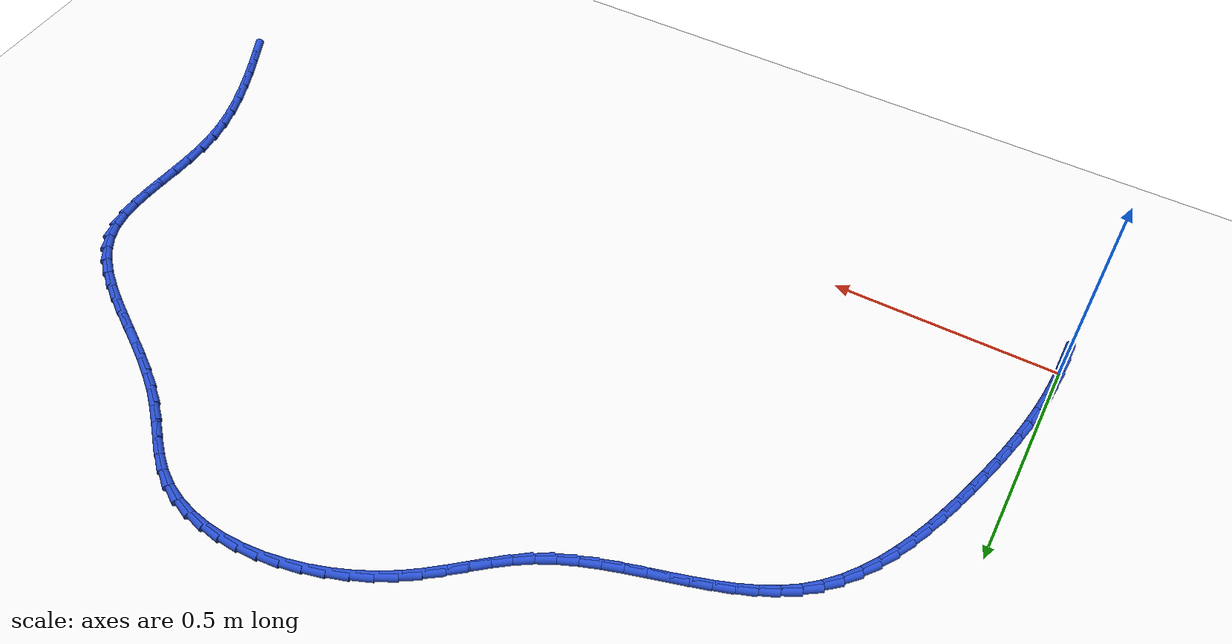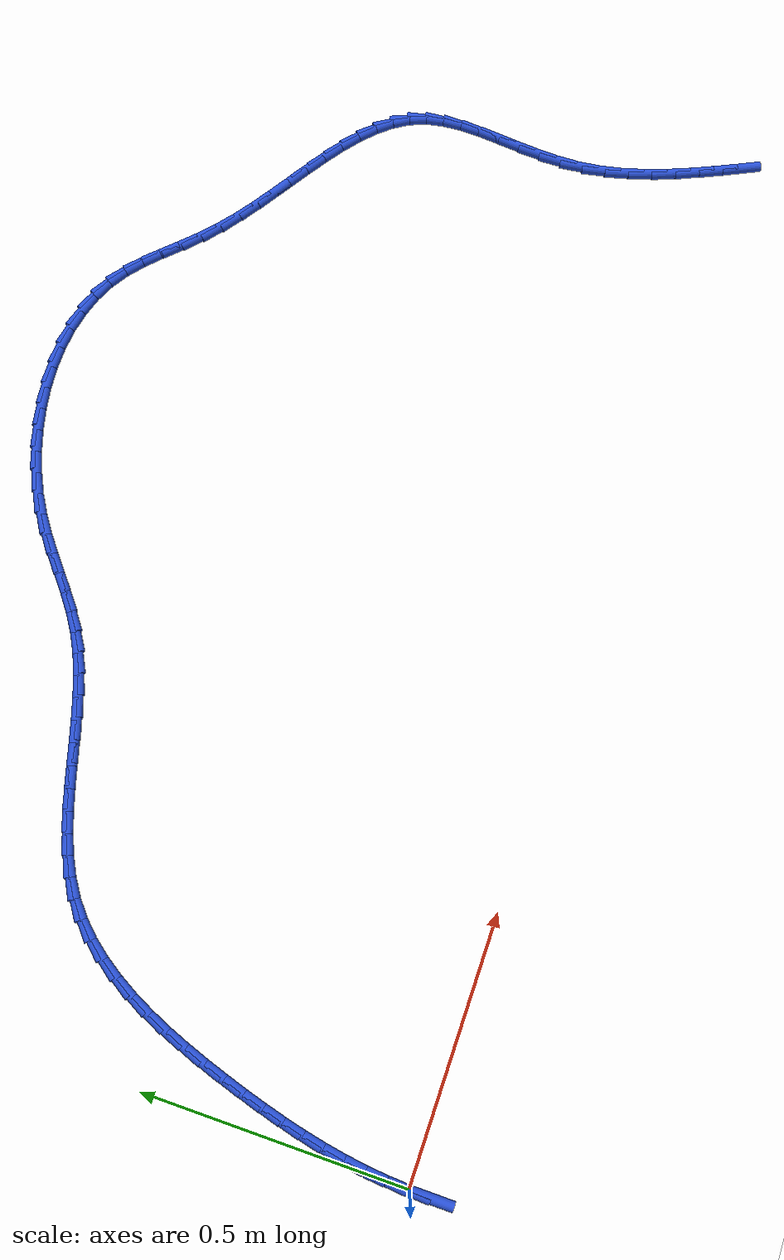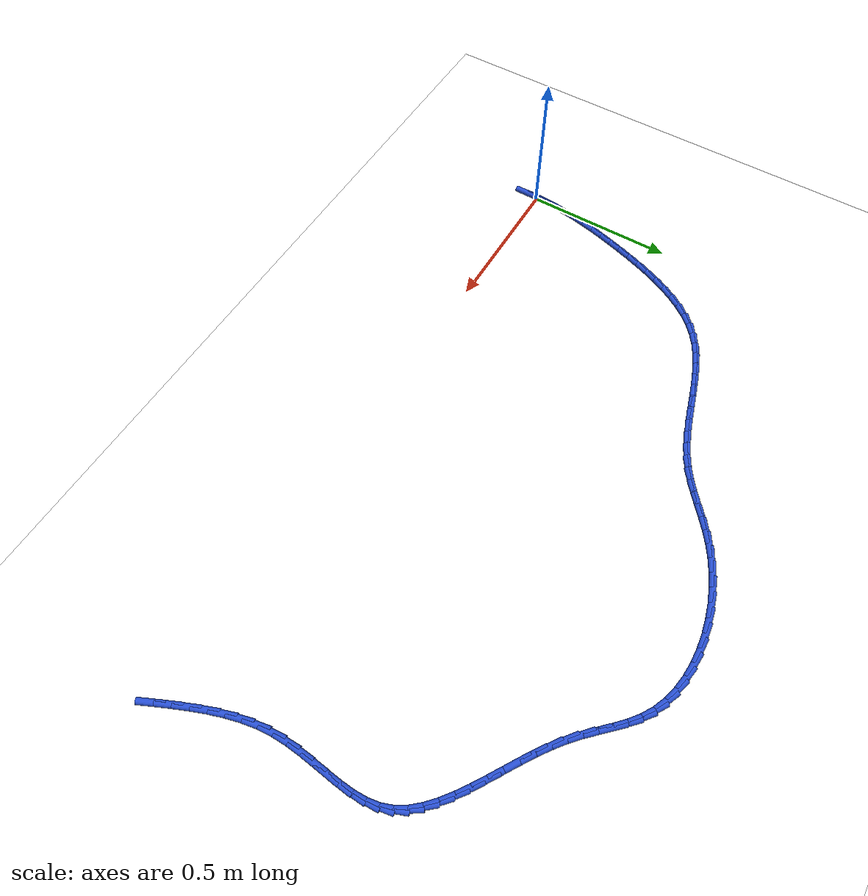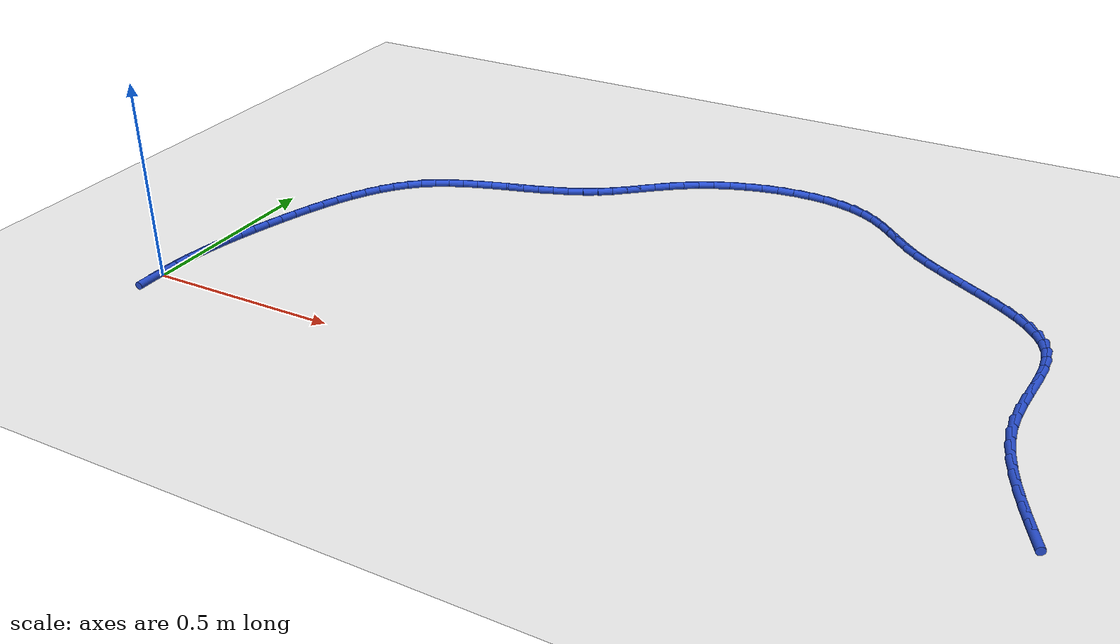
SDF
<sdf version="1.6">
 <world name="default">
  <model name="ground_plane">
   <static>1</static>
   <link name="link">
    <collision name="collision">
     <geometry><plane><normal>0 0 1</normal><size>100 100</size></plane></geometry>
     <surface><friction><ode><mu>100</mu><mu2>50</mu2></ode></friction></surface>
    </collision>
    <visual name="visual">
     <cast_shadows>0</cast_shadows>
     <geometry><plane><normal>0 0 1</normal><size>100 100</size></plane></geometry>
     <material>
      <script><uri>file://media/materials/scripts/gazebo.material</uri><name>Gazebo/WhiteGlow</name></script>
     </material>
    </visual>
   </link>
  </model>
  <model name="line">
   <link name="link_0">
    <pose>-1.5612511283791264e-17 -2.7755575615628914e-17 0.01 0 1.57 1.5235441345351743</pose>
    <collision name="collision">
     <geometry><cylinder><radius>0.01</radius><length>0.08</length></cylinder></geometry>
    </collision>
    <visual name="visual">
     <material>
      <script><name>Gazebo/Blue</name><uri>file://media/materials/scripts/gazebo.material</uri></script>
     </material>
     <geometry><cylinder><radius>0.01</radius><length>0.08</length></cylinder></geometry>
    </visual>
   </link>
   <link name="link_1">
    <pose>0.0019587226408797564 0.04142166824580028 0.01 0 1.57 1.4812073559369945</pose>
    <collision name="collision">
     <geometry><cylinder><radius>0.01</radius><length>0.08</length></cylinder></geometry>
    </collision>
    <visual name="visual">
     <material>
      <script><name>Gazebo/Blue</name><uri>file://media/materials/scripts/gazebo.material</uri></script>
     </material>
     <geometry><cylinder><radius>0.01</radius><length>0.08</length></cylinder></geometry>
    </visual>
   </link>
   <link name="link_2">
    <pose>0.005649222530782924 0.08250508536889196 0.01 0 1.57 1.4417307428629902</pose>
    <collision name="collision">
     <geometry><cylinder><radius>0.01</radius><length>0.08</length></cylinder></geometry>
    </collision>
    <visual name="visual">
     <material>
      <script><name>Gazebo/Blue</name><uri>file://media/materials/scripts/gazebo.material</uri></script>
     </material>
     <geometry><cylinder><radius>0.01</radius><length>0.08</length></cylinder></geometry>
    </visual>
   </link>
   <link name="link_3">
    <pose>0.010949388508123768 0.1233424888013563 0.01 0 1.57 1.4054774619170307</pose>
    <collision name="collision">
     <geometry><cylinder><radius>0.01</radius><length>0.08</length></cylinder></geometry>
    </collision>
    <visual name="visual">
     <material>
      <script><name>Gazebo/Blue</name><uri>file://media/materials/scripts/gazebo.material</uri></script>
     </material>
     <geometry><cylinder><radius>0.01</radius><length>0.08</length></cylinder></geometry>
    </visual>
   </link>
   <link name="link_4">
    <pose>0.01773710941131655 0.1640261159752745 0.01 0 1.57 1.3727204085524367</pose>
    <collision name="collision">
     <geometry><cylinder><radius>0.01</radius><length>0.08</length></cylinder></geometry>
    </collision>
    <visual name="visual">
     <material>
      <script><name>Gazebo/Blue</name><uri>file://media/materials/scripts/gazebo.material</uri></script>
     </material>
     <geometry><cylinder><radius>0.01</radius><length>0.08</length></cylinder></geometry>
    </visual>
   </link>
   <link name="link_5">
    <pose>0.02589027407877554 0.20464820432272776 0.01 0 1.57 1.3436452024755448</pose>
    <collision name="collision">
     <geometry><cylinder><radius>0.01</radius><length>0.08</length></cylinder></geometry>
    </collision>
    <visual name="visual">
     <material>
      <script><name>Gazebo/Blue</name><uri>file://media/materials/scripts/gazebo.material</uri></script>
     </material>
     <geometry><cylinder><radius>0.01</radius><length>0.08</length></cylinder></geometry>
    </visual>
   </link>
   <link name="link_6">
    <pose>0.035286771348914996 0.2453009912757973 0.01 0 1.57 1.3183581355259977</pose>
    <collision name="collision">
     <geometry><cylinder><radius>0.01</radius><length>0.08</length></cylinder></geometry>
    </collision>
    <visual name="visual">
     <material>
      <script><name>Gazebo/Blue</name><uri>file://media/materials/scripts/gazebo.material</uri></script>
     </material>
     <geometry><cylinder><radius>0.01</radius><length>0.08</length></cylinder></geometry>
    </visual>
   </link>
   <link name="link_7">
    <pose>0.04580449006014919 0.28607671426656434 0.01 0 1.57 1.2968970338769943</pose>
    <collision name="collision">
     <geometry><cylinder><radius>0.01</radius><length>0.08</length></cylinder></geometry>
    </collision>
    <visual name="visual">
     <material>
      <script><name>Gazebo/Blue</name><uri>file://media/materials/scripts/gazebo.material</uri></script>
     </material>
     <geometry><cylinder><radius>0.01</radius><length>0.08</length></cylinder></geometry>
    </visual>
   </link>
   <link name="link_8">
    <pose>0.05732131905089237 0.3270676107271101 0.01 0 1.57 1.2792340524860832</pose>
    <collision name="collision">
     <geometry><cylinder><radius>0.01</radius><length>0.08</length></cylinder></geometry>
    </collision>
    <visual name="visual">
     <material>
      <script><name>Gazebo/Blue</name><uri>file://media/materials/scripts/gazebo.material</uri></script>
     </material>
     <geometry><cylinder><radius>0.01</radius><length>0.08</length></cylinder></geometry>
    </visual>
   </link>
   <link name="link_9">
    <pose>0.06971543196683273 0.3683654928058505 0.01 0 1.57 1.2624395250042082</pose>
    <collision name="collision">
     <geometry><cylinder><radius>0.01</radius><length>0.08</length></cylinder></geometry>
    </collision>
    <visual name="visual">
     <material>
      <script><name>Gazebo/Blue</name><uri>file://media/materials/scripts/gazebo.material</uri></script>
     </material>
     <geometry><cylinder><radius>0.01</radius><length>0.08</length></cylinder></geometry>
    </visual>
   </link>
   <link name="link_10">
    <pose>0.08295412861086728 0.40992908651790616 0.01 0 1.57 1.2394478316514548</pose>
    <collision name="collision">
     <geometry><cylinder><radius>0.01</radius><length>0.08</length></cylinder></geometry>
    </collision>
    <visual name="visual">
     <material>
      <script><name>Gazebo/Blue</name><uri>file://media/materials/scripts/gazebo.material</uri></script>
     </material>
     <geometry><cylinder><radius>0.01</radius><length>0.08</length></cylinder></geometry>
    </visual>
   </link>
   <link name="link_11">
    <pose>0.09721997383933727 0.45139567696258104 0.01 0 1.57 1.2088685885341466</pose>
    <collision name="collision">
     <geometry><cylinder><radius>0.01</radius><length>0.08</length></cylinder></geometry>
    </collision>
    <visual name="visual">
     <material>
      <script><name>Gazebo/Blue</name><uri>file://media/materials/scripts/gazebo.material</uri></script>
     </material>
     <geometry><cylinder><radius>0.01</radius><length>0.08</length></cylinder></geometry>
    </visual>
   </link>
   <link name="link_12">
    <pose>0.112727385505535 0.4923549852879122 0.01 0 1.57 1.1700758439015493</pose>
    <collision name="collision">
     <geometry><cylinder><radius>0.01</radius><length>0.08</length></cylinder></geometry>
    </collision>
    <visual name="visual">
     <material>
      <script><name>Gazebo/Blue</name><uri>file://media/materials/scripts/gazebo.material</uri></script>
     </material>
     <geometry><cylinder><radius>0.01</radius><length>0.08</length></cylinder></geometry>
    </visual>
   </link>
   <link name="link_13">
    <pose>0.12969078146275276 0.5323967326419369 0.01 0 1.57 1.1222036602313514</pose>
    <collision name="collision">
     <geometry><cylinder><radius>0.01</radius><length>0.08</length></cylinder></geometry>
    </collision>
    <visual name="visual">
     <material>
      <script><name>Gazebo/Blue</name><uri>file://media/materials/scripts/gazebo.material</uri></script>
     </material>
     <geometry><cylinder><radius>0.01</radius><length>0.08</length></cylinder></geometry>
    </visual>
   </link>
   <link name="link_14">
    <pose>0.14832457956428274 0.5711106401726915 0.01 0 1.57 1.064183337823634</pose>
    <collision name="collision">
     <geometry><cylinder><radius>0.01</radius><length>0.08</length></cylinder></geometry>
    </collision>
    <visual name="visual">
     <material>
      <script><name>Gazebo/Blue</name><uri>file://media/materials/scripts/gazebo.material</uri></script>
     </material>
     <geometry><cylinder><radius>0.01</radius><length>0.08</length></cylinder></geometry>
    </visual>
   </link>
   <link name="link_15">
    <pose>0.1688431976634173 0.6080864290282142 0.01 0 1.57 0.9948238684890548</pose>
    <collision name="collision">
     <geometry><cylinder><radius>0.01</radius><length>0.08</length></cylinder></geometry>
    </collision>
    <visual name="visual">
     <material>
      <script><name>Gazebo/Blue</name><uri>file://media/materials/scripts/gazebo.material</uri></script>
     </material>
     <geometry><cylinder><radius>0.01</radius><length>0.08</length></cylinder></geometry>
    </visual>
   </link>
   <link name="link_16">
    <pose>0.1914610536134488 0.6429138203565417 0.01 0 1.57 0.9129737837188721</pose>
    <collision name="collision">
     <geometry><cylinder><radius>0.01</radius><length>0.08</length></cylinder></geometry>
    </collision>
    <visual name="visual">
     <material>
      <script><name>Gazebo/Blue</name><uri>file://media/materials/scripts/gazebo.material</uri></script>
     </material>
     <geometry><cylinder><radius>0.01</radius><length>0.08</length></cylinder></geometry>
    </visual>
   </link>
   <link name="link_17">
    <pose>0.2163925652676694 0.6751825353057106 0.01 0 1.57 0.8178074552991463</pose>
    <collision name="collision">
     <geometry><cylinder><radius>0.01</radius><length>0.08</length></cylinder></geometry>
    </collision>
    <visual name="visual">
     <material>
      <script><name>Gazebo/Blue</name><uri>file://media/materials/scripts/gazebo.material</uri></script>
     </material>
     <geometry><cylinder><radius>0.01</radius><length>0.08</length></cylinder></geometry>
    </visual>
   </link>
   <link name="link_18">
    <pose>0.24385215047937137 0.7044822950237585 0.01 0 1.57 0.7092593948241007</pose>
    <collision name="collision">
     <geometry><cylinder><radius>0.01</radius><length>0.08</length></cylinder></geometry>
    </collision>
    <visual name="visual">
     <material>
      <script><name>Gazebo/Blue</name><uri>file://media/materials/scripts/gazebo.material</uri></script>
     </material>
     <geometry><cylinder><radius>0.01</radius><length>0.08</length></cylinder></geometry>
    </visual>
   </link>
   <link name="link_19">
    <pose>0.2740541610401618 0.7304029207470495 0.01 0 1.57 0.5948056163354342</pose>
    <collision name="collision">
     <geometry><cylinder><radius>0.01</radius><length>0.08</length></cylinder></geometry>
    </collision>
    <visual name="visual">
     <material>
      <script><name>Gazebo/Blue</name><uri>file://media/materials/scripts/gazebo.material</uri></script>
     </material>
     <geometry><cylinder><radius>0.01</radius><length>0.08</length></cylinder></geometry>
    </visual>
   </link>
   <link name="link_20">
    <pose>0.3070752088580482 0.7527429197977387 0.01 0 1.57 0.4960526257668971</pose>
    <collision name="collision">
     <geometry><cylinder><radius>0.01</radius><length>0.08</length></cylinder></geometry>
    </collision>
    <visual name="visual">
     <material>
      <script><name>Gazebo/Blue</name><uri>file://media/materials/scripts/gazebo.material</uri></script>
     </material>
     <geometry><cylinder><radius>0.01</radius><length>0.08</length></cylinder></geometry>
    </visual>
   </link>
   <link name="link_21">
    <pose>0.34256403859086515 0.7719490499490717 0.01 0 1.57 0.4175085380684355</pose>
    <collision name="collision">
     <geometry><cylinder><radius>0.01</radius><length>0.08</length></cylinder></geometry>
    </collision>
    <visual name="visual">
     <material>
      <script><name>Gazebo/Blue</name><uri>file://media/materials/scripts/gazebo.material</uri></script>
     </material>
     <geometry><cylinder><radius>0.01</radius><length>0.08</length></cylinder></geometry>
    </visual>
   </link>
   <link name="link_22">
    <pose>0.38008655859361185 0.7885935720845658 0.01 0 1.57 0.35842059746714927</pose>
    <collision name="collision">
     <geometry><cylinder><radius>0.01</radius><length>0.08</length></cylinder></geometry>
    </collision>
    <visual name="visual">
     <material>
      <script><name>Gazebo/Blue</name><uri>file://media/materials/scripts/gazebo.material</uri></script>
     </material>
     <geometry><cylinder><radius>0.01</radius><length>0.08</length></cylinder></geometry>
    </visual>
   </link>
   <link name="link_23">
    <pose>0.4192086772212879 0.8032487470877382 0.01 0 1.57 0.3174750009113075</pose>
    <collision name="collision">
     <geometry><cylinder><radius>0.01</radius><length>0.08</length></cylinder></geometry>
    </collision>
    <visual name="visual">
     <material>
      <script><name>Gazebo/Blue</name><uri>file://media/materials/scripts/gazebo.material</uri></script>
     </material>
     <geometry><cylinder><radius>0.01</radius><length>0.08</length></cylinder></geometry>
    </visual>
   </link>
   <link name="link_24">
    <pose>0.45949630282889253 0.8164868358421056 0.01 0 1.57 0.2934138089287271</pose>
    <collision name="collision">
     <geometry><cylinder><radius>0.01</radius><length>0.08</length></cylinder></geometry>
    </collision>
    <visual name="visual">
     <material>
      <script><name>Gazebo/Blue</name><uri>file://media/materials/scripts/gazebo.material</uri></script>
     </material>
     <geometry><cylinder><radius>0.01</radius><length>0.08</length></cylinder></geometry>
    </visual>
   </link>
   <link name="link_25">
    <pose>0.5005153437714251 0.8288800992311849 0.01 0 1.57 0.2853568750488114</pose>
    <collision name="collision">
     <geometry><cylinder><radius>0.01</radius><length>0.08</length></cylinder></geometry>
    </collision>
    <visual name="visual">
     <material>
      <script><name>Gazebo/Blue</name><uri>file://media/materials/scripts/gazebo.material</uri></script>
     </material>
     <geometry><cylinder><radius>0.01</radius><length>0.08</length></cylinder></geometry>
    </visual>
   </link>
   <link name="link_26">
    <pose>0.5418317084038852 0.8410007981384933 0.01 0 1.57 0.2929380370500118</pose>
    <collision name="collision">
     <geometry><cylinder><radius>0.01</radius><length>0.08</length></cylinder></geometry>
    </collision>
    <visual name="visual">
     <material>
      <script><name>Gazebo/Blue</name><uri>file://media/materials/scripts/gazebo.material</uri></script>
     </material>
     <geometry><cylinder><radius>0.01</radius><length>0.08</length></cylinder></geometry>
    </visual>
   </link>
   <link name="link_27">
    <pose>0.5830113050812714 0.8534211934475472 0.01 0 1.57 0.3163355165066644</pose>
    <collision name="collision">
     <geometry><cylinder><radius>0.01</radius><length>0.08</length></cylinder></geometry>
    </collision>
    <visual name="visual">
     <material>
      <script><name>Gazebo/Blue</name><uri>file://media/materials/scripts/gazebo.material</uri></script>
     </material>
     <geometry><cylinder><radius>0.01</radius><length>0.08</length></cylinder></geometry>
    </visual>
   </link>
   <link name="link_28">
    <pose>0.6236200421585838 0.8667135460418643 0.01 0 1.57 0.3562258292247421</pose>
    <collision name="collision">
     <geometry><cylinder><radius>0.01</radius><length>0.08</length></cylinder></geometry>
    </collision>
    <visual name="visual">
     <material>
      <script><name>Gazebo/Blue</name><uri>file://media/materials/scripts/gazebo.material</uri></script>
     </material>
     <geometry><cylinder><radius>0.01</radius><length>0.08</length></cylinder></geometry>
    </visual>
   </link>
   <link name="link_29">
    <pose>0.6632238279908214 0.8814501168049611 0.01 0 1.57 0.413640812660089</pose>
    <collision name="collision">
     <geometry><cylinder><radius>0.01</radius><length>0.08</length></cylinder></geometry>
    </collision>
    <visual name="visual">
     <material>
      <script><name>Gazebo/Blue</name><uri>file://media/materials/scripts/gazebo.material</uri></script>
     </material>
     <geometry><cylinder><radius>0.01</radius><length>0.08</length></cylinder></geometry>
    </visual>
   </link>
   <link name="link_30">
    <pose>0.7013885709329837 0.8982031666203546 0.01 0 1.57 0.48966263523068054</pose>
    <collision name="collision">
     <geometry><cylinder><radius>0.01</radius><length>0.08</length></cylinder></geometry>
    </collision>
    <visual name="visual">
     <material>
      <script><name>Gazebo/Blue</name><uri>file://media/materials/scripts/gazebo.material</uri></script>
     </material>
     <geometry><cylinder><radius>0.01</radius><length>0.08</length></cylinder></geometry>
    </visual>
   </link>
   <link name="link_31">
    <pose>0.7376801793400698 0.9175449563715617 0.01 0 1.57 0.5793938275352636</pose>
    <collision name="collision">
     <geometry><cylinder><radius>0.01</radius><length>0.08</length></cylinder></geometry>
    </collision>
    <visual name="visual">
     <material>
      <script><name>Gazebo/Blue</name><uri>file://media/materials/scripts/gazebo.material</uri></script>
     </material>
     <geometry><cylinder><radius>0.01</radius><length>0.08</length></cylinder></geometry>
    </visual>
   </link>
   <link name="link_32">
    <pose>0.7718120637004536 0.9398775310171754 0.01 0 1.57 0.6499337032496447</pose>
    <collision name="collision">
     <geometry><cylinder><radius>0.01</radius><length>0.08</length></cylinder></geometry>
    </collision>
    <visual name="visual">
     <material>
      <script><name>Gazebo/Blue</name><uri>file://media/materials/scripts/gazebo.material</uri></script>
     </material>
     <geometry><cylinder><radius>0.01</radius><length>0.08</length></cylinder></geometry>
    </visual>
   </link>
   <link name="link_33">
    <pose>0.8043550702523262 0.9646134635950826 0.01 0 1.57 0.6885315111517385</pose>
    <collision name="collision">
     <geometry><cylinder><radius>0.01</radius><length>0.08</length></cylinder></geometry>
    </collision>
    <visual name="visual">
     <material>
      <script><name>Gazebo/Blue</name><uri>file://media/materials/scripts/gazebo.material</uri></script>
     </material>
     <geometry><cylinder><radius>0.01</radius><length>0.08</length></cylinder></geometry>
    </visual>
   </link>
   <link name="link_34">
    <pose>0.8361890696538092 0.9908087161826402 0.01 0 1.57 0.6954569006285427</pose>
    <collision name="collision">
     <geometry><cylinder><radius>0.01</radius><length>0.08</length></cylinder></geometry>
    </collision>
    <visual name="visual">
     <material>
      <script><name>Gazebo/Blue</name><uri>file://media/materials/scripts/gazebo.material</uri></script>
     </material>
     <geometry><cylinder><radius>0.01</radius><length>0.08</length></cylinder></geometry>
    </visual>
   </link>
   <link name="link_35">
    <pose>0.8681943453729905 1.0175187744788063 0.01 0 1.57 0.6716877842707996</pose>
    <collision name="collision">
     <geometry><cylinder><radius>0.01</radius><length>0.08</length></cylinder></geometry>
    </collision>
    <visual name="visual">
     <material>
      <script><name>Gazebo/Blue</name><uri>file://media/materials/scripts/gazebo.material</uri></script>
     </material>
     <geometry><cylinder><radius>0.01</radius><length>0.08</length></cylinder></geometry>
    </visual>
   </link>
   <link name="link_36">
    <pose>0.9012511808779582 1.0437991241825397 0.01 0 1.57 0.6186240878455893</pose>
    <collision name="collision">
     <geometry><cylinder><radius>0.01</radius><length>0.08</length></cylinder></geometry>
    </collision>
    <visual name="visual">
     <material>
      <script><name>Gazebo/Blue</name><uri>file://media/materials/scripts/gazebo.material</uri></script>
     </material>
     <geometry><cylinder><radius>0.01</radius><length>0.08</length></cylinder></geometry>
    </visual>
   </link>
   <link name="link_37">
    <pose>0.9362398596368002 1.0687052509927988 0.01 0 1.57 0.5428938042867804</pose>
    <collision name="collision">
     <geometry><cylinder><radius>0.01</radius><length>0.08</length></cylinder></geometry>
    </collision>
    <visual name="visual">
     <material>
      <script><name>Gazebo/Blue</name><uri>file://media/materials/scripts/gazebo.material</uri></script>
     </material>
     <geometry><cylinder><radius>0.01</radius><length>0.08</length></cylinder></geometry>
    </visual>
   </link>
   <link name="link_38">
    <pose>0.9738482978249657 1.0913970567296392 0.01 0 1.57 0.46622374881692324</pose>
    <collision name="collision">
     <geometry><cylinder><radius>0.01</radius><length>0.08</length></cylinder></geometry>
    </collision>
    <visual name="visual">
     <material>
      <script><name>Gazebo/Blue</name><uri>file://media/materials/scripts/gazebo.material</uri></script>
     </material>
     <geometry><cylinder><radius>0.01</radius><length>0.08</length></cylinder></geometry>
    </visual>
   </link>
   <link name="link_39">
    <pose>1.0138537237460024 1.1115287605880206 0.01 0 1.57 0.39294533319013003</pose>
    <collision name="collision">
     <geometry><cylinder><radius>0.01</radius><length>0.08</length></cylinder></geometry>
    </collision>
    <visual name="visual">
     <material>
      <script><name>Gazebo/Blue</name><uri>file://media/materials/scripts/gazebo.material</uri></script>
     </material>
     <geometry><cylinder><radius>0.01</radius><length>0.08</length></cylinder></geometry>
    </visual>
   </link>
   <link name="link_40">
    <pose>1.055764140451307 1.1289007160466766 0.01 0 1.57 0.32115752640766104</pose>
    <collision name="collision">
     <geometry><cylinder><radius>0.01</radius><length>0.08</length></cylinder></geometry>
    </collision>
    <visual name="visual">
     <material>
      <script><name>Gazebo/Blue</name><uri>file://media/materials/scripts/gazebo.material</uri></script>
     </material>
     <geometry><cylinder><radius>0.01</radius><length>0.08</length></cylinder></geometry>
    </visual>
   </link>
   <link name="link_41">
    <pose>1.0990875106862608 1.1433132984622671 0.01 0 1.57 0.24906964289258188</pose>
    <collision name="collision">
     <geometry><cylinder><radius>0.01</radius><length>0.08</length></cylinder></geometry>
    </collision>
    <visual name="visual">
     <material>
      <script><name>Gazebo/Blue</name><uri>file://media/materials/scripts/gazebo.material</uri></script>
     </material>
     <geometry><cylinder><radius>0.01</radius><length>0.08</length></cylinder></geometry>
    </visual>
   </link>
   <link name="link_42">
    <pose>1.1433317971962451 1.154566883191454 0.01 0 1.57 0.17492102681269955</pose>
    <collision name="collision">
     <geometry><cylinder><radius>0.01</radius><length>0.08</length></cylinder></geometry>
    </collision>
    <visual name="visual">
     <material>
      <script><name>Gazebo/Blue</name><uri>file://media/materials/scripts/gazebo.material</uri></script>
     </material>
     <geometry><cylinder><radius>0.01</radius><length>0.08</length></cylinder></geometry>
    </visual>
   </link>
   <link name="link_43">
    <pose>1.1880049627266416 1.1624618455908977 0.01 0 1.57 0.0969094420745964</pose>
    <collision name="collision">
     <geometry><cylinder><radius>0.01</radius><length>0.08</length></cylinder></geometry>
    </collision>
    <visual name="visual">
     <material>
      <script><name>Gazebo/Blue</name><uri>file://media/materials/scripts/gazebo.material</uri></script>
     </material>
     <geometry><cylinder><radius>0.01</radius><length>0.08</length></cylinder></geometry>
    </visual>
   </link>
   <link name="link_44">
    <pose>1.2326149700228315 1.1667985610172593 0.01 0 1.57 0.01313841733789783</pose>
    <collision name="collision">
     <geometry><cylinder><radius>0.01</radius><length>0.08</length></cylinder></geometry>
    </collision>
    <visual name="visual">
     <material>
      <script><name>Gazebo/Blue</name><uri>file://media/materials/scripts/gazebo.material</uri></script>
     </material>
     <geometry><cylinder><radius>0.01</radius><length>0.08</length></cylinder></geometry>
    </visual>
   </link>
   <link name="link_45">
    <pose>1.2766697818301966 1.1673774048271992 0.01 0 1.57 -0.07839844966000052</pose>
    <collision name="collision">
     <geometry><cylinder><radius>0.01</radius><length>0.08</length></cylinder></geometry>
    </collision>
    <visual name="visual">
     <material>
      <script><name>Gazebo/Blue</name><uri>file://media/materials/scripts/gazebo.material</uri></script>
     </material>
     <geometry><cylinder><radius>0.01</radius><length>0.08</length></cylinder></geometry>
    </visual>
   </link>
   <link name="link_46">
    <pose>1.3196773608941181 1.1639987523773787 0.01 0 1.57 -0.17976201178281492</pose>
    <collision name="collision">
     <geometry><cylinder><radius>0.01</radius><length>0.08</length></cylinder></geometry>
    </collision>
    <visual name="visual">
     <material>
      <script><name>Gazebo/Blue</name><uri>file://media/materials/scripts/gazebo.material</uri></script>
     </material>
     <geometry><cylinder><radius>0.01</radius><length>0.08</length></cylinder></geometry>
    </visual>
   </link>
   <link name="link_47">
    <pose>1.3611456699599778 1.1564629790244585 0.01 0 1.57 -0.29288496934135305</pose>
    <collision name="collision">
     <geometry><cylinder><radius>0.01</radius><length>0.08</length></cylinder></geometry>
    </collision>
    <visual name="visual">
     <material>
      <script><name>Gazebo/Blue</name><uri>file://media/materials/scripts/gazebo.material</uri></script>
     </material>
     <geometry><cylinder><radius>0.01</radius><length>0.08</length></cylinder></geometry>
    </visual>
   </link>
   <link name="link_48">
    <pose>1.4005826717731562 1.1445704601250994 0.01 0 1.57 -0.41919255714978215</pose>
    <collision name="collision">
     <geometry><cylinder><radius>0.01</radius><length>0.08</length></cylinder></geometry>
    </collision>
    <visual name="visual">
     <material>
      <script><name>Gazebo/Blue</name><uri>file://media/materials/scripts/gazebo.material</uri></script>
     </material>
     <geometry><cylinder><radius>0.01</radius><length>0.08</length></cylinder></geometry>
    </visual>
   </link>
   <link name="link_49">
    <pose>1.437496329079036 1.128121571035963 0.01 0 1.57 -0.5583029167495953</pose>
    <collision name="collision">
     <geometry><cylinder><radius>0.01</radius><length>0.08</length></cylinder></geometry>
    </collision>
    <visual name="visual">
     <material>
      <script><name>Gazebo/Blue</name><uri>file://media/materials/scripts/gazebo.material</uri></script>
     </material>
     <geometry><cylinder><radius>0.01</radius><length>0.08</length></cylinder></geometry>
    </visual>
   </link>
   <link name="link_50">
    <pose>1.4714160359522916 1.1069357326519556 0.01 0 1.57 -0.6841987360473872</pose>
    <collision name="collision">
     <geometry><cylinder><radius>0.01</radius><length>0.08</length></cylinder></geometry>
    </collision>
    <visual name="visual">
     <material>
      <script><name>Gazebo/Blue</name><uri>file://media/materials/scripts/gazebo.material</uri></script>
     </material>
     <geometry><cylinder><radius>0.01</radius><length>0.08</length></cylinder></geometry>
    </visual>
   </link>
   <link name="link_51">
    <pose>1.5026123953724473 1.0814910614791031 0.01 0 1.57 -0.764009676580501</pose>
    <collision name="collision">
     <geometry><cylinder><radius>0.01</radius><length>0.08</length></cylinder></geometry>
    </collision>
    <visual name="visual">
     <material>
      <script><name>Gazebo/Blue</name><uri>file://media/materials/scripts/gazebo.material</uri></script>
     </material>
     <geometry><cylinder><radius>0.01</radius><length>0.08</length></cylinder></geometry>
    </visual>
   </link>
   <link name="link_52">
    <pose>1.5322688208373172 1.0530768681122282 0.01 0 1.57 -0.7969854230017098</pose>
    <collision name="collision">
     <geometry><cylinder><radius>0.01</radius><length>0.08</length></cylinder></geometry>
    </collision>
    <visual name="visual">
     <material>
      <script><name>Gazebo/Blue</name><uri>file://media/materials/scripts/gazebo.material</uri></script>
     </material>
     <geometry><cylinder><radius>0.01</radius><length>0.08</length></cylinder></geometry>
    </visual>
   </link>
   <link name="link_53">
    <pose>1.5616249447338104 1.0230324236030077 0.01 0 1.57 -0.7860573964405503</pose>
    <collision name="collision">
     <geometry><cylinder><radius>0.01</radius><length>0.08</length></cylinder></geometry>
    </collision>
    <visual name="visual">
     <material>
      <script><name>Gazebo/Blue</name><uri>file://media/materials/scripts/gazebo.material</uri></script>
     </material>
     <geometry><cylinder><radius>0.01</radius><length>0.08</length></cylinder></geometry>
    </visual>
   </link>
   <link name="link_54">
    <pose>1.591920399448836 0.9926969990031153 0.01 0 1.57 -0.7341413859010629</pose>
    <collision name="collision">
     <geometry><cylinder><radius>0.01</radius><length>0.08</length></cylinder></geometry>
    </collision>
    <visual name="visual">
     <material>
      <script><name>Gazebo/Blue</name><uri>file://media/materials/scripts/gazebo.material</uri></script>
     </material>
     <geometry><cylinder><radius>0.01</radius><length>0.08</length></cylinder></geometry>
    </visual>
   </link>
   <link name="link_55">
    <pose>1.6243846077212396 0.9634011856337734 0.01 0 1.57 -0.6647828148002256</pose>
    <collision name="collision">
     <geometry><cylinder><radius>0.01</radius><length>0.08</length></cylinder></geometry>
    </collision>
    <visual name="visual">
     <material>
      <script><name>Gazebo/Blue</name><uri>file://media/materials/scripts/gazebo.material</uri></script>
     </material>
     <geometry><cylinder><radius>0.01</radius><length>0.08</length></cylinder></geometry>
    </visual>
   </link>
   <link name="link_56">
    <pose>1.6595228400960749 0.9358599369597133 0.01 0 1.57 -0.6124754038024182</pose>
    <collision name="collision">
     <geometry><cylinder><radius>0.01</radius><length>0.08</length></cylinder></geometry>
    </collision>
    <visual name="visual">
     <material>
      <script><name>Gazebo/Blue</name><uri>file://media/materials/scripts/gazebo.material</uri></script>
     </material>
     <geometry><cylinder><radius>0.01</radius><length>0.08</length></cylinder></geometry>
    </visual>
   </link>
   <link name="link_57">
    <pose>1.6966485909951337 0.9097750181901658 0.01 0 1.57 -0.5785015639301634</pose>
    <collision name="collision">
     <geometry><cylinder><radius>0.01</radius><length>0.08</length></cylinder></geometry>
    </collision>
    <visual name="visual">
     <material>
      <script><name>Gazebo/Blue</name><uri>file://media/materials/scripts/gazebo.material</uri></script>
     </material>
     <geometry><cylinder><radius>0.01</radius><length>0.08</length></cylinder></geometry>
    </visual>
   </link>
   <link name="link_58">
    <pose>1.7349642807448902 0.8847537649123323 0.01 0 1.57 -0.5615240338880346</pose>
    <collision name="collision">
     <geometry><cylinder><radius>0.01</radius><length>0.08</length></cylinder></geometry>
    </collision>
    <visual name="visual">
     <material>
      <script><name>Gazebo/Blue</name><uri>file://media/materials/scripts/gazebo.material</uri></script>
     </material>
     <geometry><cylinder><radius>0.01</radius><length>0.08</length></cylinder></geometry>
    </visual>
   </link>
   <link name="link_59">
    <pose>1.7736723296718186 0.8604035127134135 0.01 0 1.57 -0.5610857824687269</pose>
    <collision name="collision">
     <geometry><cylinder><radius>0.01</radius><length>0.08</length></cylinder></geometry>
    </collision>
    <visual name="visual">
     <material>
      <script><name>Gazebo/Blue</name><uri>file://media/materials/scripts/gazebo.material</uri></script>
     </material>
     <geometry><cylinder><radius>0.01</radius><length>0.08</length></cylinder></geometry>
    </visual>
   </link>
   <link name="link_60">
    <pose>1.8119751581023948 0.8363315971806116 0.01 0 1.57 -0.5777236378943515</pose>
    <collision name="collision">
     <geometry><cylinder><radius>0.01</radius><length>0.08</length></cylinder></geometry>
    </collision>
    <visual name="visual">
     <material>
      <script><name>Gazebo/Blue</name><uri>file://media/materials/scripts/gazebo.material</uri></script>
     </material>
     <geometry><cylinder><radius>0.01</radius><length>0.08</length></cylinder></geometry>
    </visual>
   </link>
   <link name="link_61">
    <pose>1.8490751863630932 0.8121453539011263 0.01 0 1.57 -0.6130831567668751</pose>
    <collision name="collision">
     <geometry><cylinder><radius>0.01</radius><length>0.08</length></cylinder></geometry>
    </collision>
    <visual name="visual">
     <material>
      <script><name>Gazebo/Blue</name><uri>file://media/materials/scripts/gazebo.material</uri></script>
     </material>
     <geometry><cylinder><radius>0.01</radius><length>0.08</length></cylinder></geometry>
    </visual>
   </link>
   <link name="link_62">
    <pose>1.8841748347803877 0.7874521184621599 0.01 0 1.57 -0.6700331723719222</pose>
    <collision name="collision">
     <geometry><cylinder><radius>0.01</radius><length>0.08</length></cylinder></geometry>
    </collision>
    <visual name="visual">
     <material>
      <script><name>Gazebo/Blue</name><uri>file://media/materials/scripts/gazebo.material</uri></script>
     </material>
     <geometry><cylinder><radius>0.01</radius><length>0.08</length></cylinder></geometry>
    </visual>
   </link>
   <link name="link_63">
    <pose>1.9164765236807548 0.7618592264509132 0.01 0 1.57 -0.7526541220119248</pose>
    <collision name="collision">
     <geometry><cylinder><radius>0.01</radius><length>0.08</length></cylinder></geometry>
    </collision>
    <visual name="visual">
     <material>
      <script><name>Gazebo/Blue</name><uri>file://media/materials/scripts/gazebo.material</uri></script>
     </material>
     <geometry><cylinder><radius>0.01</radius><length>0.08</length></cylinder></geometry>
    </visual>
   </link>
   <link name="link_64">
    <pose>1.9451826733906683 0.7349740134545877 0.01 0 1.57 -0.8657262196260628</pose>
    <collision name="collision">
     <geometry><cylinder><radius>0.01</radius><length>0.08</length></cylinder></geometry>
    </collision>
    <visual name="visual">
     <material>
      <script><name>Gazebo/Blue</name><uri>file://media/materials/scripts/gazebo.material</uri></script>
     </material>
     <geometry><cylinder><radius>0.01</radius><length>0.08</length></cylinder></geometry>
    </visual>
   </link>
   <link name="link_65">
    <pose>1.9694957042366024 0.7064038150603841 0.01 0 1.57 -1.0129616439397218</pose>
    <collision name="collision">
     <geometry><cylinder><radius>0.01</radius><length>0.08</length></cylinder></geometry>
    </collision>
    <visual name="visual">
     <material>
      <script><name>Gazebo/Blue</name><uri>file://media/materials/scripts/gazebo.material</uri></script>
     </material>
     <geometry><cylinder><radius>0.01</radius><length>0.08</length></cylinder></geometry>
    </visual>
   </link>
   <link name="link_66">
    <pose>1.9886180365450326 0.6757559668555035 0.01 0 1.57 -1.192933921805183</pose>
    <collision name="collision">
     <geometry><cylinder><radius>0.01</radius><length>0.08</length></cylinder></geometry>
    </collision>
    <visual name="visual">
     <material>
      <script><name>Gazebo/Blue</name><uri>file://media/materials/scripts/gazebo.material</uri></script>
     </material>
     <geometry><cylinder><radius>0.01</radius><length>0.08</length></cylinder></geometry>
    </visual>
   </link>
   <link name="link_67">
    <pose>2.0017624751888983 0.6426412300228792 0.01 0 1.57 -1.3738185705847812</pose>
    <collision name="collision">
     <geometry><cylinder><radius>0.01</radius><length>0.08</length></cylinder></geometry>
    </collision>
    <visual name="visual">
     <material>
      <script><name>Gazebo/Blue</name><uri>file://media/materials/scripts/gazebo.material</uri></script>
     </material>
     <geometry><cylinder><radius>0.01</radius><length>0.08</length></cylinder></geometry>
    </visual>
   </link>
   <link name="link_68">
    <pose>2.0088916568504382 0.6069177160417845 0.01 0 1.57 -1.5099692431528025</pose>
    <collision name="collision">
     <geometry><cylinder><radius>0.01</radius><length>0.08</length></cylinder></geometry>
    </collision>
    <visual name="visual">
     <material>
      <script><name>Gazebo/Blue</name><uri>file://media/materials/scripts/gazebo.material</uri></script>
     </material>
     <geometry><cylinder><radius>0.01</radius><length>0.08</length></cylinder></geometry>
    </visual>
   </link>
   <link name="link_69">
    <pose>2.011209874581328 0.5688531270051806 0.01 0 1.57 1.5415825518406643</pose>
    <collision name="collision">
     <geometry><cylinder><radius>0.01</radius><length>0.08</length></cylinder></geometry>
    </collision>
    <visual name="visual">
     <material>
      <script><name>Gazebo/Blue</name><uri>file://media/materials/scripts/gazebo.material</uri></script>
     </material>
     <geometry><cylinder><radius>0.01</radius><length>0.08</length></cylinder></geometry>
    </visual>
   </link>
   <link name="link_70">
    <pose>2.0100380840840764 0.5287536490245757 0.01 0 1.57 1.4910948927993597</pose>
    <collision name="collision">
     <geometry><cylinder><radius>0.01</radius><length>0.08</length></cylinder></geometry>
    </collision>
    <visual name="visual">
     <material>
      <script><name>Gazebo/Blue</name><uri>file://media/materials/scripts/gazebo.material</uri></script>
     </material>
     <geometry><cylinder><radius>0.01</radius><length>0.08</length></cylinder></geometry>
    </visual>
   </link>
   <link name="link_71">
    <pose>2.0066972410611967 0.4869254682114772 0.01 0 1.57 1.474244934203311</pose>
    <collision name="collision">
     <geometry><cylinder><radius>0.01</radius><length>0.08</length></cylinder></geometry>
    </collision>
    <visual name="visual">
     <material>
      <script><name>Gazebo/Blue</name><uri>file://media/materials/scripts/gazebo.material</uri></script>
     </material>
     <geometry><cylinder><radius>0.01</radius><length>0.08</length></cylinder></geometry>
    </visual>
   </link>
   <link name="link_72">
    <pose>2.0025083012151996 0.44367477067739447 0.01 0 1.57 1.4872336533153059</pose>
    <collision name="collision">
     <geometry><cylinder><radius>0.01</radius><length>0.08</length></cylinder></geometry>
    </collision>
    <visual name="visual">
     <material>
      <script><name>Gazebo/Blue</name><uri>file://media/materials/scripts/gazebo.material</uri></script>
     </material>
     <geometry><cylinder><radius>0.01</radius><length>0.08</length></cylinder></geometry>
    </visual>
   </link>
   <link name="link_73">
    <pose>1.9987922202485966 0.39930774253383516 0.01 0 1.57 1.528272470863807</pose>
    <collision name="collision">
     <geometry><cylinder><radius>0.01</radius><length>0.08</length></cylinder></geometry>
    </collision>
    <visual name="visual">
     <material>
      <script><name>Gazebo/Blue</name><uri>file://media/materials/scripts/gazebo.material</uri></script>
     </material>
     <geometry><cylinder><radius>0.01</radius><length>0.08</length></cylinder></geometry>
    </visual>
   </link>
   <link name="link_74">
    <pose>1.9968699538638994 0.3541305698923073 0.01 0 1.57 -1.5446972986207361</pose>
    <collision name="collision">
     <geometry><cylinder><radius>0.01</radius><length>0.08</length></cylinder></geometry>
    </collision>
    <visual name="visual">
     <material>
      <script><name>Gazebo/Blue</name><uri>file://media/materials/scripts/gazebo.material</uri></script>
     </material>
     <geometry><cylinder><radius>0.01</radius><length>0.08</length></cylinder></geometry>
    </visual>
   </link>
   <link name="link_75">
    <pose>1.9980624577636186 0.30844943886431964 0.01 0 1.57 -1.451494894429507</pose>
    <collision name="collision">
     <geometry><cylinder><radius>0.01</radius><length>0.08</length></cylinder></geometry>
    </collision>
    <visual name="visual">
     <material>
      <script><name>Gazebo/Blue</name><uri>file://media/materials/scripts/gazebo.material</uri></script>
     </material>
     <geometry><cylinder><radius>0.01</radius><length>0.08</length></cylinder></geometry>
    </visual>
   </link>
   <link name="link_76">
    <pose>2.0035632578234095 0.2625599819278947 0.01 0 1.57 -1.3608356118671094</pose>
    <collision name="collision">
     <geometry><cylinder><radius>0.01</radius><length>0.08</length></cylinder></geometry>
    </collision>
    <visual name="visual">
     <material>
      <script><name>Gazebo/Blue</name><uri>file://media/materials/scripts/gazebo.material</uri></script>
     </material>
     <geometry><cylinder><radius>0.01</radius><length>0.08</length></cylinder></geometry>
    </visual>
   </link>
   <link name="link_77">
    <pose>2.0133453008955464 0.21665674420991735 0.01 0 1.57 -1.2869007687631921</pose>
    <collision name="collision">
     <geometry><cylinder><radius>0.01</radius><length>0.08</length></cylinder></geometry>
    </collision>
    <visual name="visual">
     <material>
      <script><name>Gazebo/Blue</name><uri>file://media/materials/scripts/gazebo.material</uri></script>
     </material>
     <geometry><cylinder><radius>0.01</radius><length>0.08</length></cylinder></geometry>
    </visual>
   </link>
   <link name="link_78">
    <pose>2.0267024650307963 0.17087803091747372 0.01 0 1.57 -1.228494243747942</pose>
    <collision name="collision">
     <geometry><cylinder><radius>0.01</radius><length>0.08</length></cylinder></geometry>
    </collision>
    <visual name="visual">
     <material>
      <script><name>Gazebo/Blue</name><uri>file://media/materials/scripts/gazebo.material</uri></script>
     </material>
     <geometry><cylinder><radius>0.01</radius><length>0.08</length></cylinder></geometry>
    </visual>
   </link>
   <link name="link_79">
    <pose>2.04292131630186 0.12536154168563704 0.01 0 1.57 -1.1841814200367355</pose>
    <collision name="collision">
     <geometry><cylinder><radius>0.01</radius><length>0.08</length></cylinder></geometry>
    </collision>
    <visual name="visual">
     <material>
      <script><name>Gazebo/Blue</name><uri>file://media/materials/scripts/gazebo.material</uri></script>
     </material>
     <geometry><cylinder><radius>0.01</radius><length>0.08</length></cylinder></geometry>
    </visual>
   </link>
   <link name="link_80">
    <pose>2.0612884207814375 0.08024497614948196 0.01 0 1.57 -1.1527769332031688</pose>
    <collision name="collision">
     <geometry><cylinder><radius>0.01</radius><length>0.08</length></cylinder></geometry>
    </collision>
    <visual name="visual">
     <material>
      <script><name>Gazebo/Blue</name><uri>file://media/materials/scripts/gazebo.material</uri></script>
     </material>
     <geometry><cylinder><radius>0.01</radius><length>0.08</length></cylinder></geometry>
    </visual>
   </link>
   <link name="link_81">
    <pose>2.0810903445422304 0.03566603394408205 0.01 0 1.57 -1.1335156010842014</pose>
    <collision name="collision">
     <geometry><cylinder><radius>0.01</radius><length>0.08</length></cylinder></geometry>
    </collision>
    <visual name="visual">
     <material>
      <script><name>Gazebo/Blue</name><uri>file://media/materials/scripts/gazebo.material</uri></script>
     </material>
     <geometry><cylinder><radius>0.01</radius><length>0.08</length></cylinder></geometry>
    </visual>
   </link>
   <link name="link_82">
    <pose>2.1016136536569396 -0.008237585295489194 0.01 0 1.57 -1.1261514804661747</pose>
    <collision name="collision">
     <geometry><cylinder><radius>0.01</radius><length>0.08</length></cylinder></geometry>
    </collision>
    <visual name="visual">
     <material>
      <script><name>Gazebo/Blue</name><uri>file://media/materials/scripts/gazebo.material</uri></script>
     </material>
     <geometry><cylinder><radius>0.01</radius><length>0.08</length></cylinder></geometry>
    </visual>
   </link>
   <link name="link_169">
    <pose>-0.0001185379911472148 -0.041803393464897615 0.01 0 1.57 1.5679607274902583</pose>
    <collision name="collision">
     <geometry><cylinder><radius>0.01</radius><length>0.08</length></cylinder></geometry>
    </collision>
    <visual name="visual">
     <material>
      <script><name>Gazebo/Blue</name><uri>file://media/materials/scripts/gazebo.material</uri></script>
     </material>
     <geometry><cylinder><radius>0.01</radius><length>0.08</length></cylinder></geometry>
    </visual>
   </link>
   <link name="link_170">
    <pose>-5.204170427930421e-18 -1.3183898417423734e-16 0.01 0 1.57 1.5231580451331044</pose>
    <collision name="collision">
     <geometry><cylinder><radius>0.01</radius><length>0.08</length></cylinder></geometry>
    </collision>
    <visual name="visual">
     <material>
      <script><name>Gazebo/Blue</name><uri>file://media/materials/scripts/gazebo.material</uri></script>
     </material>
     <geometry><cylinder><radius>0.01</radius><length>0.08</length></cylinder></geometry>
    </visual>
   </link>
   <link name="link_171">
    <pose>0.001972426401756329 0.04137290491010752 0.01 0 1.57 1.523158045133104</pose>
    <collision name="collision">
     <geometry><cylinder><radius>0.01</radius><length>0.08</length></cylinder></geometry>
    </collision>
    <visual name="visual">
     <material>
      <script><name>Gazebo/Blue</name><uri>file://media/materials/scripts/gazebo.material</uri></script>
     </material>
     <geometry><cylinder><radius>0.01</radius><length>0.08</length></cylinder></geometry>
    </visual>
   </link>
  </model>
 </world>
</sdf>
